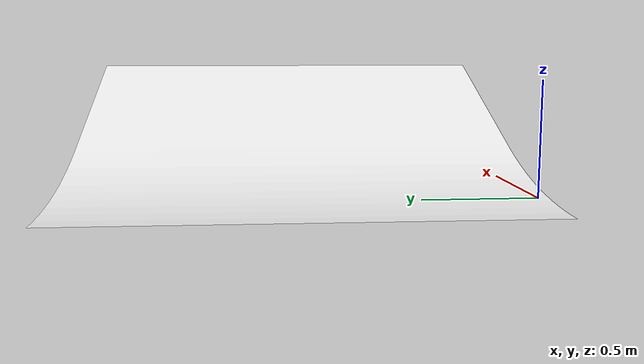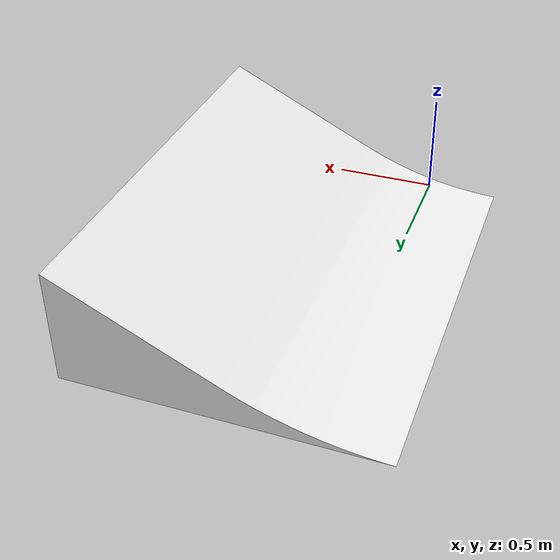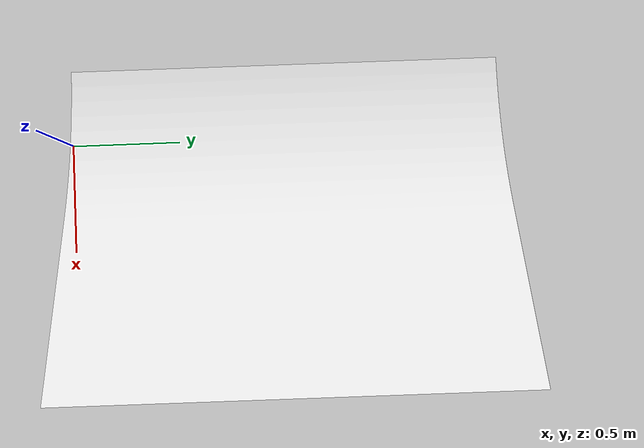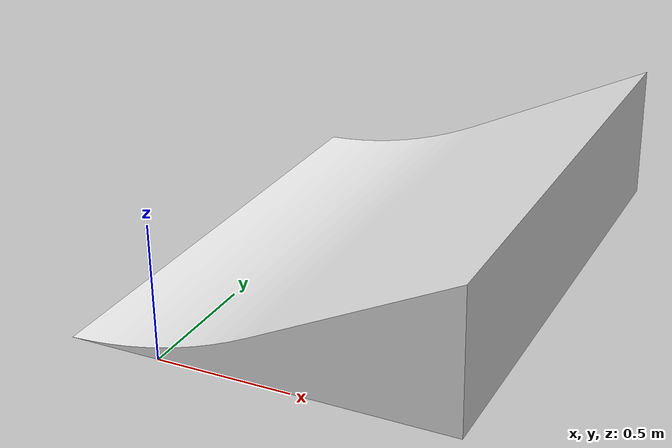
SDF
<?xml version="1.0"?>
<sdf version="1.5">
  <model name="jump26deg">
    <static>true</static>
    <link name="link">
      <collision name="collision">
        <geometry>
          <mesh>
            <uri>model://urdf/cad/jump26deg.dae</uri>
            <scale>1 1 1</scale>
          </mesh>
        </geometry>
        <surface>
          <friction>
            <ode>
              <mu>100</mu>
              <mu2>50</mu2>
            </ode>
          </friction>
        </surface>
      </collision>
      <visual name="visual">
        <cast_shadows>false</cast_shadows>
        <geometry>
          <mesh>
            <uri>model://urdf/cad/jump26deg.dae</uri>
            <scale>1 1 1</scale>
          </mesh>
        </geometry>
        <material>
          <script>
            <uri>model://urdf/gazebo.material</uri>
            <name>Gazebo/White</name>
          </script>
        </material>
      </visual>
    </link>
  </model>
</sdf>
